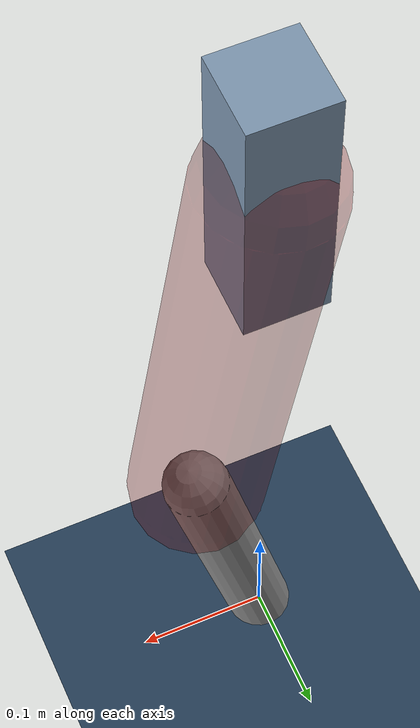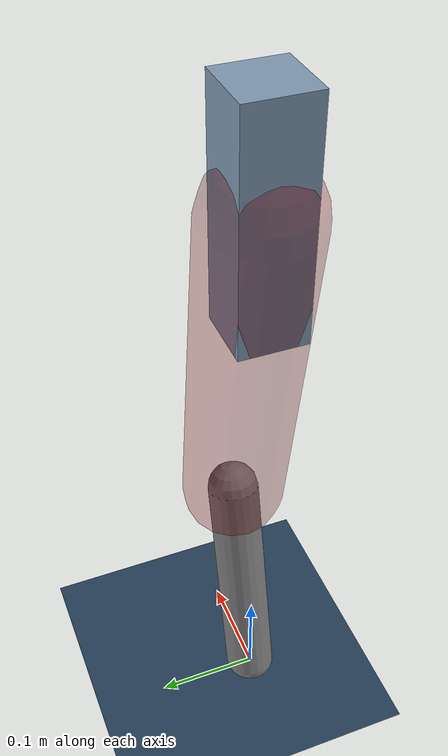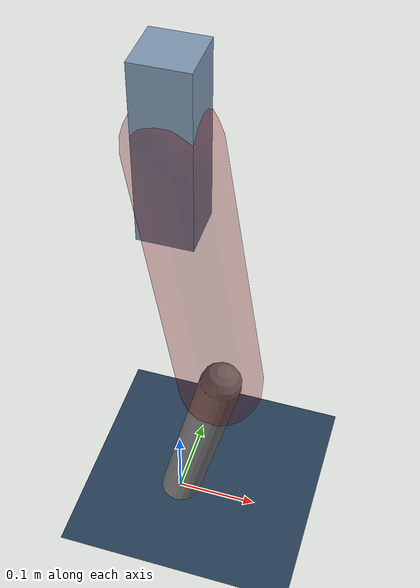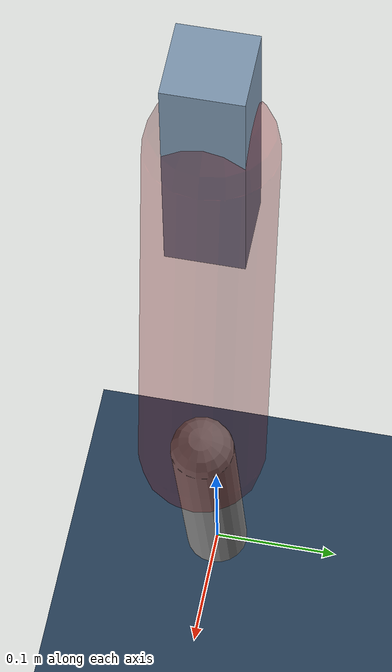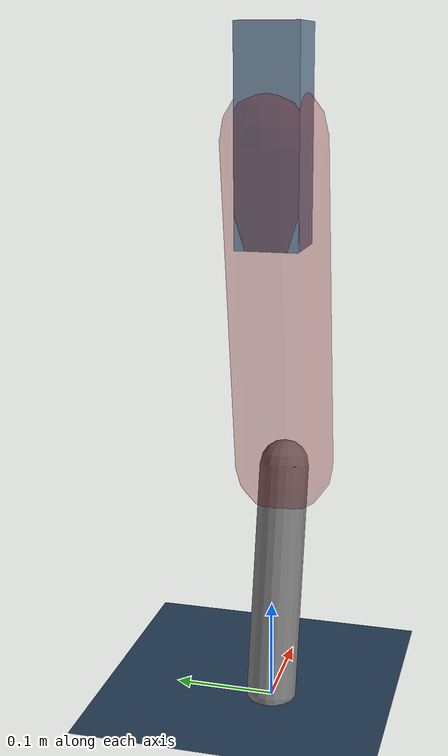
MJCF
<mujoco model="Hopper2D">
	<compiler inertiafromgeom="true" angle="radian" />
	<option timestep="0.001" integrator="implicit" cone="elliptic" solver="Newton" tolerance="1e-10" />

	<default>
		<geom contype="1" conaffinity="1" condim="3" friction="2 0.005 0.0001" solref="0.005 1" />
		<joint limited="true" damping="0.1" />
	</default>

	<asset>
		<texture name="skybox" type="skybox" builtin="gradient" rgb1=".4 .6 .8" rgb2="0 0 0" width="800" height="800" />
		<texture name="grid" type="2d" builtin="checker" rgb1=".1 .2 .3" rgb2=".2 .3 .4" width="300" height="300" mark="edge" markrgb=".2 .3 .4" />
		<material name="ground" texture="grid" texrepeat="1 1" texuniform="true" reflectance="0.1" />
		<material name="leg" rgba="0.5 0.6 0.7 1" />
	</asset>

	<worldbody>

		<geom name="floor" type="plane" size="5 5 0.25" material="ground" />

		<light directional="false" diffuse="0.8 0.8 0.8" specular="0.3 0.3 0.3" pos="0 0 2" dir="0 0 -1" />
		<light mode="targetbodycom" target="base" directional="false" diffuse="0.8 0.8 0.8" specular="0.3 0.3 0.3" pos="0 0 2" dir="0 0 -1" />

		<camera name="fixed" pos="0 -2 1" xyaxes="1 0 0 0 0 1" />
		<camera name="tracking" mode="trackcom" pos="0 -3 1" />

		<body name="root" pos="0 0 0.5609196964329384">
			<joint name="slide_x" type="slide" axis="1 0 0" range="-100 100" />
			<joint name="slide_z" type="slide" axis="0 0 1" range="0 10" />

			<body name="base" pos="0 0 0">
				<geom name="torso" type="box" size="0.03 0.03 0.1" mass="2.5839999999999996" material="leg" />

				<body name="link1" pos="0 0 0" euler="0 1.4128477653477358 0">
					<joint type="hinge" axis="0 -1 0" pos="0 0 0" name="hinge1" limited="true" range="-3.14 3.14" stiffness="0" damping="0.1" />
					<geom name="thigh" type="capsule" fromto="0 0 0 0.33324075568050343 0 0" size="0.05" rgba="0.5 0 0 0.3" mass="1.0798500403373592" />

					<body name="link2" pos="0.33324075568050343 0 0" euler="0 0.3803106050726509 0">
						<joint type="hinge" axis="0 -1 0" pos="0 0 0" name="hinge2" limited="true" range="-3.14 3.14" stiffness="0" damping="0.1" />
						<geom name="shank" type="capsule" fromto="0 0 0 0.237678940752435 0 0" size="0.025" mass="0.432343152601948" />

					</body>
				</body>
			</body>
		</body>
	</worldbody>

	<actuator>
		<motor name="torque1" joint="hinge1" ctrlrange="-59.86919582273123 59.86919582273123" ctrllimited="true" gear="1" />
		<motor name="torque2" joint="hinge2" ctrlrange="-73.4615570155241 73.4615570155241" ctrllimited="true" gear="1" />
	</actuator>
</mujoco>
